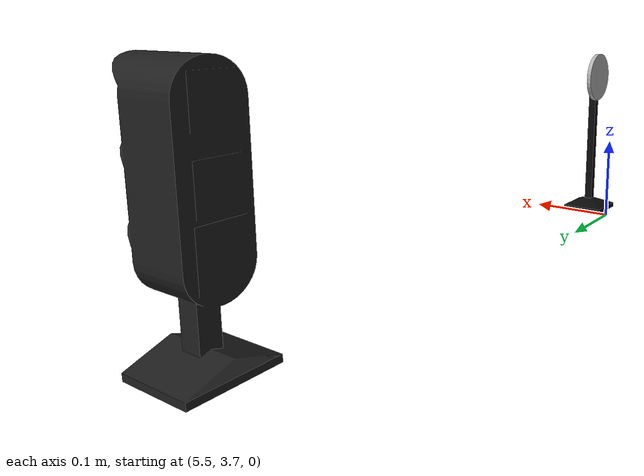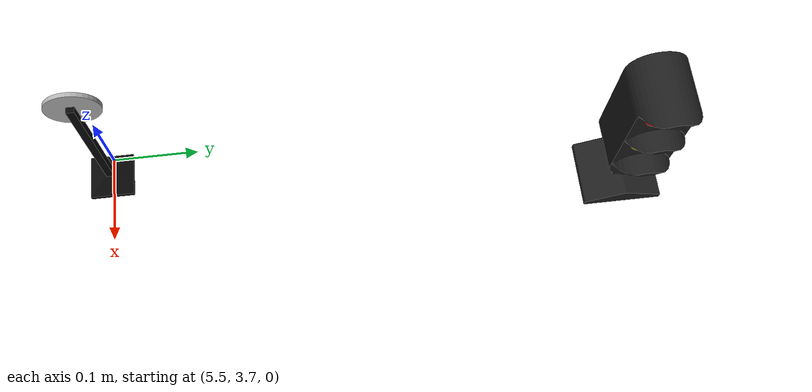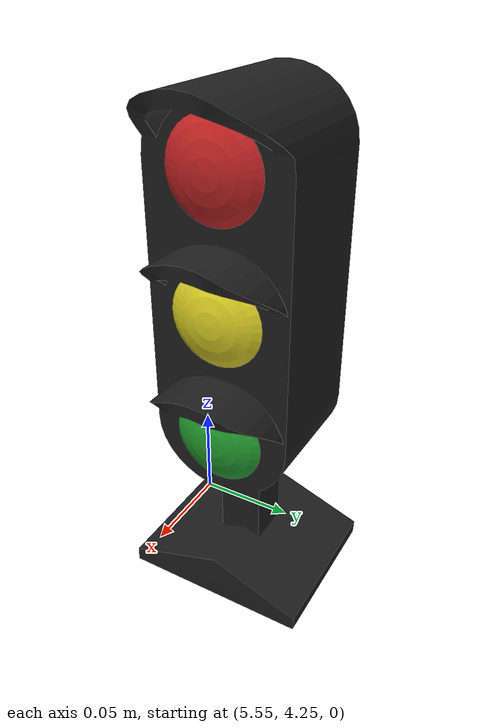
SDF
<sdf version="1.7">
 <world name="bfmc_official">
  <model name="master">
   <link name="case">
    <inertial>
     <mass>0.5</mass>
     <inertia><ixx>0.166667</ixx><ixy>0</ixy><ixz>0</ixz><iyy>0</iyy><iyz>0</iyz><izz>0</izz></inertia>
    </inertial>
    <pose>-0.048681 0.002156 0 0 -0 0</pose>
    <visual name="visual">
     <geometry>
      <mesh><uri>model://traffic_light/meshes/traffic_light_case.dae</uri><scale>1 1 1</scale></mesh>
     </geometry>
     <material>
      <script><uri>file://media/materials/scripts/gazebo.material</uri><name>PR2/Black</name></script>
      <shader type="vertex"><normal_map>__default__</normal_map></shader>
      <ambient>0.2 0.2 0.2 1</ambient>
      <diffuse>0.2 0.2 0.2 1</diffuse>
      <specular>0.01 0.01 0.01 1</specular>
      <emissive>0 0 0 1</emissive>
     </material>
     <cast_shadows>0</cast_shadows>
    </visual>
    <collision name="collision">
     <geometry>
      <mesh><uri>model://traffic_light/meshes/traffic_light_case.dae</uri><scale>1 1 1</scale></mesh>
     </geometry>
     <surface>
      <friction>
       <ode><mu>1</mu><mu2>1</mu2><fdir1>0 0 0</fdir1><slip1>0</slip1><slip2>0</slip2></ode>
       <torsional>
        <coefficient>1</coefficient>
        <patch_radius>0</patch_radius>
        <surface_radius>0</surface_radius>
        <use_patch_radius>1</use_patch_radius>
        <ode><slip>0</slip></ode>
       </torsional>
      </friction>
      <bounce><restitution_coefficient>0</restitution_coefficient><threshold>1e+06</threshold></bounce>
      <contact>
       <collide_without_contact>0</collide_without_contact>
       <collide_without_contact_bitmask>1</collide_without_contact_bitmask>
       <collide_bitmask>1</collide_bitmask>
       <ode>
        <soft_cfm>0</soft_cfm>
        <soft_erp>0.2</soft_erp>
        <kp>1e+13</kp>
        <kd>1</kd>
        <max_vel>0.01</max_vel>
        <min_depth>0</min_depth>
       </ode>
       <bullet>
        <split_impulse>1</split_impulse>
        <split_impulse_penetration_threshold>-0.01</split_impulse_penetration_threshold>
        <soft_cfm>0</soft_cfm>
        <soft_erp>0.2</soft_erp>
        <kp>1e+13</kp>
        <kd>1</kd>
       </bullet>
      </contact>
     </surface>
    </collision>
   </link>
   <link name="green_lens">
    <light name="green_lens_light" type="spot">
     <pose relative_to="green_lens">4 0.001819 1 0 1.32589 0</pose>
     <diffuse>0 1 0 0</diffuse>
     <specular>0 1 0 0</specular>
     <attenuation><range>5</range><linear>0</linear><constant>0.08</constant><quadratic>0</quadratic></attenuation>
     <spot><inner_angle>0</inner_angle><outer_angle>0.01</outer_angle><falloff>1</falloff></spot>
     <cast_shadows>0</cast_shadows>
     <direction>0 0 -1</direction>
    </light>
    <inertial>
     <mass>1</mass>
     <inertia>
      <ixx>0.166667</ixx>
      <ixy>0</ixy>
      <ixz>0</ixz>
      <iyy>0.166667</iyy>
      <iyz>0</iyz>
      <izz>0.166667</izz>
     </inertia>
    </inertial>
    <pose>-0.018681 -0.000719 0.09102 0 -0 0</pose>
    <visual name="visual">
     <geometry>
      <mesh><uri>model://traffic_light/meshes/traffic_light_lens.dae</uri><scale>1 1 1</scale></mesh>
     </geometry>
     <material>
      <script>
       <uri>model://traffic_light/materials/scripts</uri>
       <uri>model://traffic_light/materials/textures</uri>
       <name>GREEN_LENS</name>
      </script>
      <emissive>0 0 0 1</emissive>
     </material>
     <cast_shadows>0</cast_shadows>
    </visual>
   </link>
   <link name="yellow_lens">
    <light name="yellow_lens_light" type="spot">
     <pose relative_to="yellow_lens">4 0.001819 1 0 1.32589 0</pose>
     <diffuse>1 1 0 0</diffuse>
     <specular>1 1 0 0</specular>
     <attenuation><range>5</range><linear>0</linear><constant>0.08</constant><quadratic>0</quadratic></attenuation>
     <spot><inner_angle>0</inner_angle><outer_angle>0.01</outer_angle><falloff>1</falloff></spot>
     <cast_shadows>0</cast_shadows>
     <direction>0 0 -1</direction>
    </light>
    <inertial>
     <mass>1</mass>
     <inertia>
      <ixx>0.166667</ixx>
      <ixy>0</ixy>
      <ixz>0</ixz>
      <iyy>0.166667</iyy>
      <iyz>0</iyz>
      <izz>0.166667</izz>
     </inertia>
    </inertial>
    <pose>-0.018681 -0.000719 0.15 0 -0 0</pose>
    <visual name="visual">
     <geometry>
      <mesh><uri>model://traffic_light/meshes/traffic_light_lens.dae</uri><scale>1 1 1</scale></mesh>
     </geometry>
     <material>
      <script>
       <uri>model://traffic_light/materials/scripts</uri>
       <uri>model://traffic_light/materials/textures</uri>
       <name>YELLOW_LENS</name>
      </script>
      <emissive>0 0 0 1</emissive>
     </material>
     <cast_shadows>0</cast_shadows>
    </visual>
   </link>
   <link name="red_lens">
    <light name="red_lens_light" type="spot">
     <pose relative_to="red_lens">4 0.001819 1 0 1.32589 0</pose>
     <diffuse>1 0 0 0</diffuse>
     <specular>1 0 0 0</specular>
     <attenuation><range>5</range><linear>0</linear><constant>0.08</constant><quadratic>0</quadratic></attenuation>
     <spot><inner_angle>0</inner_angle><outer_angle>0.01</outer_angle><falloff>1</falloff></spot>
     <cast_shadows>0</cast_shadows>
     <direction>0 0 -1</direction>
    </light>
    <inertial>
     <mass>1</mass>
     <inertia>
      <ixx>0.166667</ixx>
      <ixy>0</ixy>
      <ixz>0</ixz>
      <iyy>0.166667</iyy>
      <iyz>0</iyz>
      <izz>0.166667</izz>
     </inertia>
    </inertial>
    <pose>-0.018681 -0.000719 0.21022 0 -0 0</pose>
    <visual name="visual">
     <geometry>
      <mesh><uri>model://traffic_light/meshes/traffic_light_lens.dae</uri><scale>1 1 1</scale></mesh>
     </geometry>
     <material>
      <script>
       <uri>model://traffic_light/materials/scripts</uri>
       <uri>model://traffic_light/materials/textures</uri>
       <name>RED_LENS</name>
      </script>
      <emissive>0 0 0 1</emissive>
     </material>
     <cast_shadows>0</cast_shadows>
    </visual>
   </link>
   <joint name="link_1_JOINT_0" type="fixed">
    <parent>case</parent>
    <child>red_lens</child>
    <physics>
     <ode><limit><cfm>0</cfm><erp>0.2</erp></limit><suspension><cfm>0</cfm><erp>0.2</erp></suspension></ode>
    </physics>
   </joint>
   <joint name="link_1_JOINT_1" type="fixed">
    <parent>case</parent>
    <child>yellow_lens</child>
    <physics>
     <ode><limit><cfm>0</cfm><erp>0.2</erp></limit><suspension><cfm>0</cfm><erp>0.2</erp></suspension></ode>
    </physics>
   </joint>
   <joint name="link_1_JOINT_2" type="fixed">
    <parent>case</parent>
    <child>green_lens</child>
    <physics>
     <ode><limit><cfm>0</cfm><erp>0.2</erp></limit><suspension><cfm>0</cfm><erp>0.2</erp></suspension></ode>
    </physics>
   </joint>
   <static>1</static>
   <plugin name="traffic_light_plugin" filename="libtraffic_light_plugin.so">
    <robotNamespace>/</robotNamespace>
   </plugin>
   <pose>5.63 4.292 0 0 -0 0</pose>
  </model>
  <model name="prohibited_sign">
   <static>1</static>
   <link name="sign_leg">
    <inertial>
     <mass>0.5</mass>
     <inertia>
      <ixx>0.166667</ixx>
      <ixy>0</ixy>
      <ixz>0</ixz>
      <iyy>0.166667</iyy>
      <iyz>0</iyz>
      <izz>0.166667</izz>
     </inertia>
     <pose>0 0 -0.078998 0 -0 0</pose>
    </inertial>
    <pose>0.002193 -0.000682 -0.07606 0 -0 0</pose>
    <self_collide>1</self_collide>
    <enable_wind>1</enable_wind>
    <visual name="visual">
     <geometry><mesh><uri>model://subassembly/meshes/sign_leg.dae</uri><scale>1 1 1</scale></mesh></geometry>
    </visual>
    <collision name="collision">
     <geometry><mesh><uri>model://subassembly/meshes/sign_leg.dae</uri><scale>1 1 1</scale></mesh></geometry>
     <surface>
      <friction>
       <ode><mu>0.46</mu><mu2>1</mu2><fdir1>0 0 0</fdir1><slip1>0</slip1><slip2>0</slip2></ode>
       <torsional>
        <coefficient>1</coefficient>
        <patch_radius>0</patch_radius>
        <surface_radius>0</surface_radius>
        <use_patch_radius>1</use_patch_radius>
        <ode><slip>0</slip></ode>
       </torsional>
      </friction>
      <bounce><restitution_coefficient>0</restitution_coefficient><threshold>1e+06</threshold></bounce>
      <contact>
       <collide_without_contact>0</collide_without_contact>
       <collide_without_contact_bitmask>1</collide_without_contact_bitmask>
       <collide_bitmask>1</collide_bitmask>
       <ode>
        <soft_cfm>0</soft_cfm>
        <soft_erp>0.2</soft_erp>
        <kp>1e+13</kp>
        <kd>1</kd>
        <max_vel>0.01</max_vel>
        <min_depth>0</min_depth>
       </ode>
       <bullet>
        <split_impulse>1</split_impulse>
        <split_impulse_penetration_threshold>-0.01</split_impulse_penetration_threshold>
        <soft_cfm>0</soft_cfm>
        <soft_erp>0.2</soft_erp>
        <kp>1e+13</kp>
        <kd>1</kd>
       </bullet>
      </contact>
     </surface>
    </collision>
   </link>
   <link name="rectangular_support">
    <inertial>
     <mass>0.022</mass>
     <inertia>
      <ixx>0.166667</ixx>
      <ixy>0</ixy>
      <ixz>0</ixz>
      <iyy>0.166667</iyy>
      <iyz>0</iyz>
      <izz>0.166667</izz>
     </inertia>
    </inertial>
    <pose>-0 0 0.09894 0 -0 3.14159</pose>
    <self_collide>1</self_collide>
    <enable_wind>1</enable_wind>
    <visual name="visual">
     <geometry>
      <mesh><uri>model://prohibited_sign/meshes/notallowed_sign.dae</uri><scale>1 1 1</scale></mesh>
     </geometry>
     <material>
      <lighting>1</lighting>
      <script>
       <uri>model://prohibited_sign/materials/scripts</uri>
       <uri>model://prohibited_sign/materials/textures</uri>
       <name>NOTALLOWED_SIGN</name>
      </script>
      <shader type="vertex"><normal_map>__default__</normal_map></shader>
      <ambient>0.3 0.3 0.3 1</ambient>
      <diffuse>0.7 0.7 0.7 1</diffuse>
      <specular>0.01 0.01 0.01 1</specular>
      <emissive>0 0 0 1</emissive>
     </material>
    </visual>
    <collision name="collision">
     <geometry>
      <mesh><uri>model://prohibited_sign/meshes/notallowed_sign.dae</uri><scale>1 1 1</scale></mesh>
     </geometry>
     <surface>
      <friction>
       <ode><mu>0.46</mu><mu2>1</mu2><fdir1>0 0 0</fdir1><slip1>0</slip1><slip2>0</slip2></ode>
       <torsional>
        <coefficient>1</coefficient>
        <patch_radius>0</patch_radius>
        <surface_radius>0</surface_radius>
        <use_patch_radius>1</use_patch_radius>
        <ode><slip>0</slip></ode>
       </torsional>
      </friction>
      <bounce><restitution_coefficient>0</restitution_coefficient><threshold>1e+06</threshold></bounce>
      <contact>
       <collide_without_contact>0</collide_without_contact>
       <collide_without_contact_bitmask>1</collide_without_contact_bitmask>
       <collide_bitmask>1</collide_bitmask>
       <ode>
        <soft_cfm>0</soft_cfm>
        <soft_erp>0.2</soft_erp>
        <kp>1e+13</kp>
        <kd>1</kd>
        <max_vel>0.01</max_vel>
        <min_depth>0</min_depth>
       </ode>
       <bullet>
        <split_impulse>1</split_impulse>
        <split_impulse_penetration_threshold>-0.01</split_impulse_penetration_threshold>
        <soft_cfm>0</soft_cfm>
        <soft_erp>0.2</soft_erp>
        <kp>1e+13</kp>
        <kd>1</kd>
       </bullet>
      </contact>
     </surface>
    </collision>
   </link>
   <joint name="support_to_leg_joint" type="fixed">
    <parent>link_0</parent>
    <child>link_1</child>
    <physics>
     <ode><limit><cfm>0</cfm><erp>0.2</erp></limit><suspension><cfm>0</cfm><erp>0.2</erp></suspension></ode>
    </physics>
   </joint>
   <static>1</static>
   <pose>5.52269 3.70126 0.085655 0 -0 0</pose>
  </model>
 </world>
</sdf>
